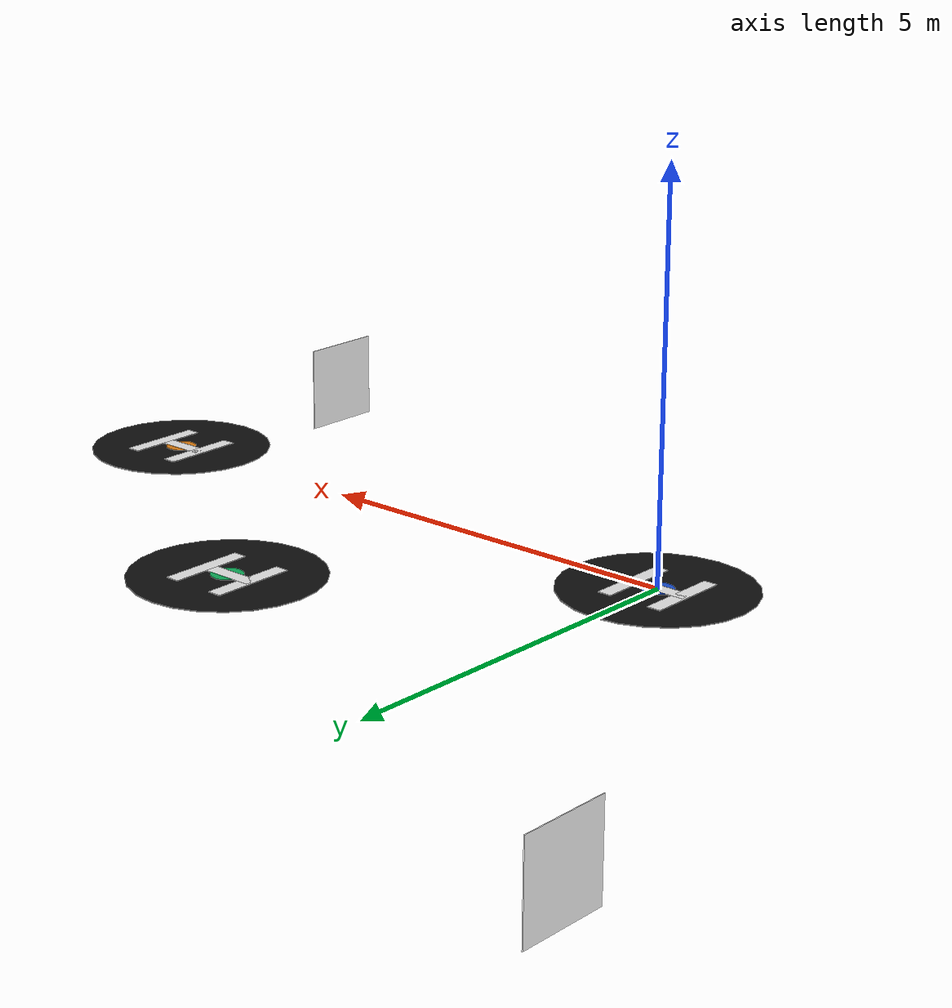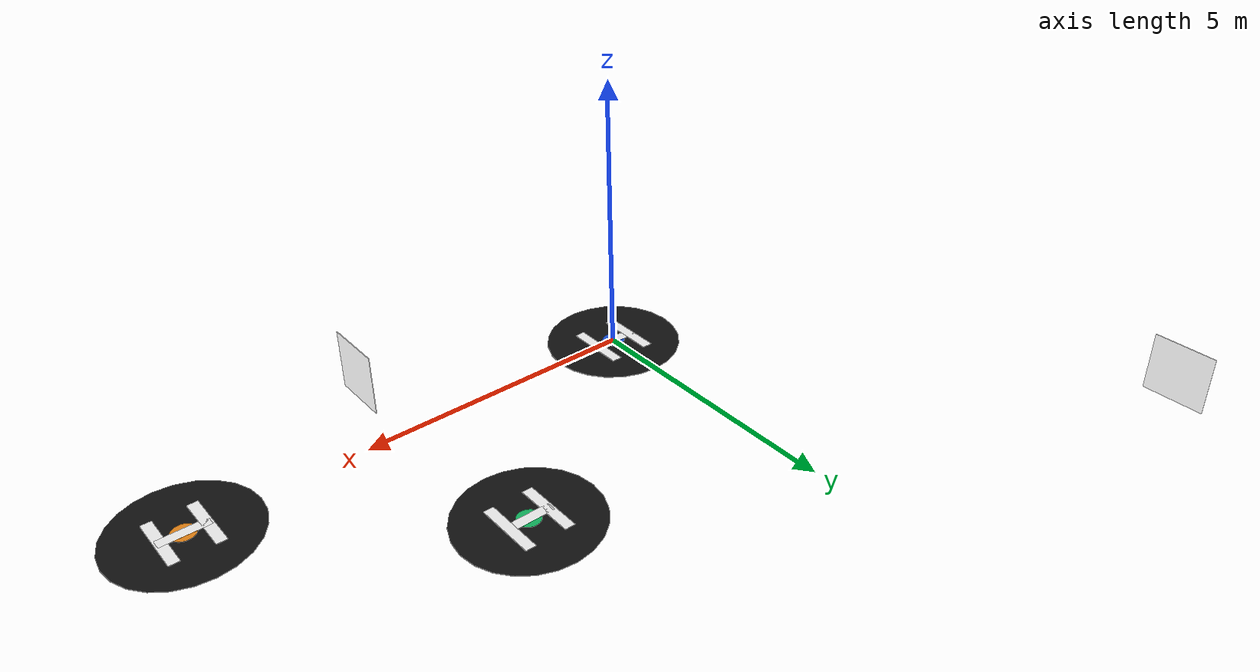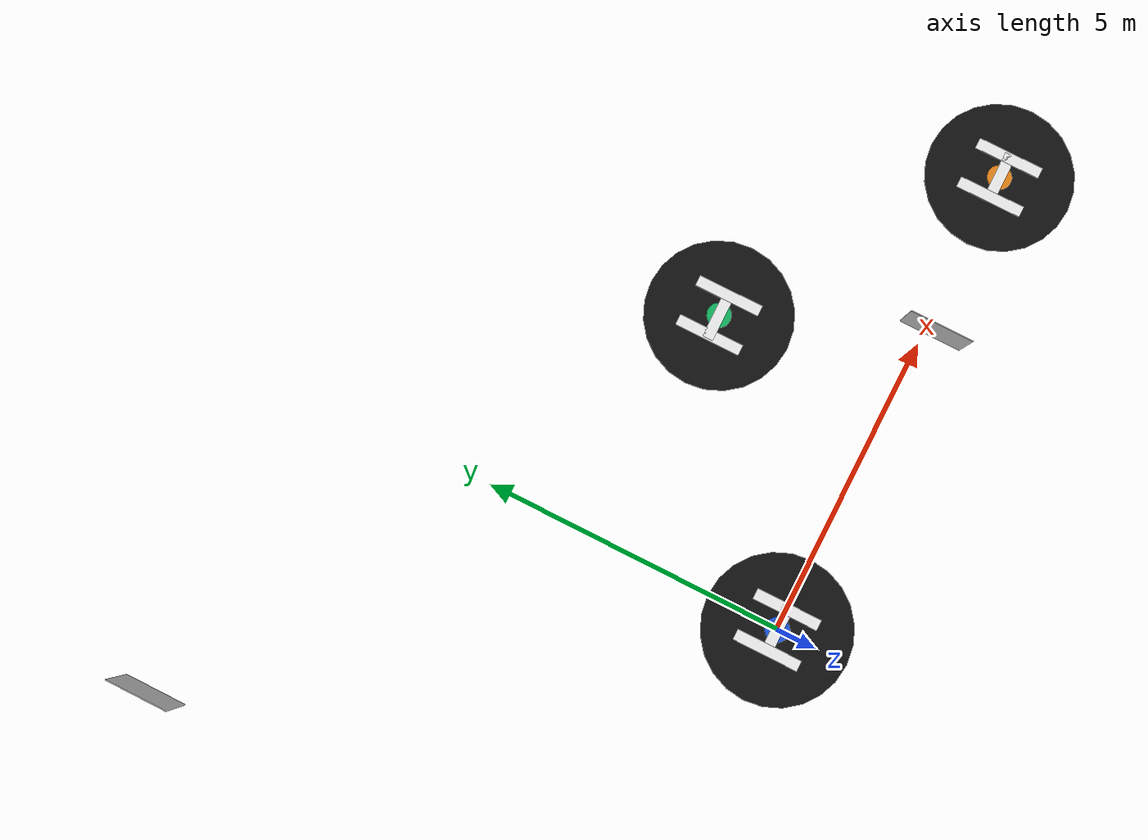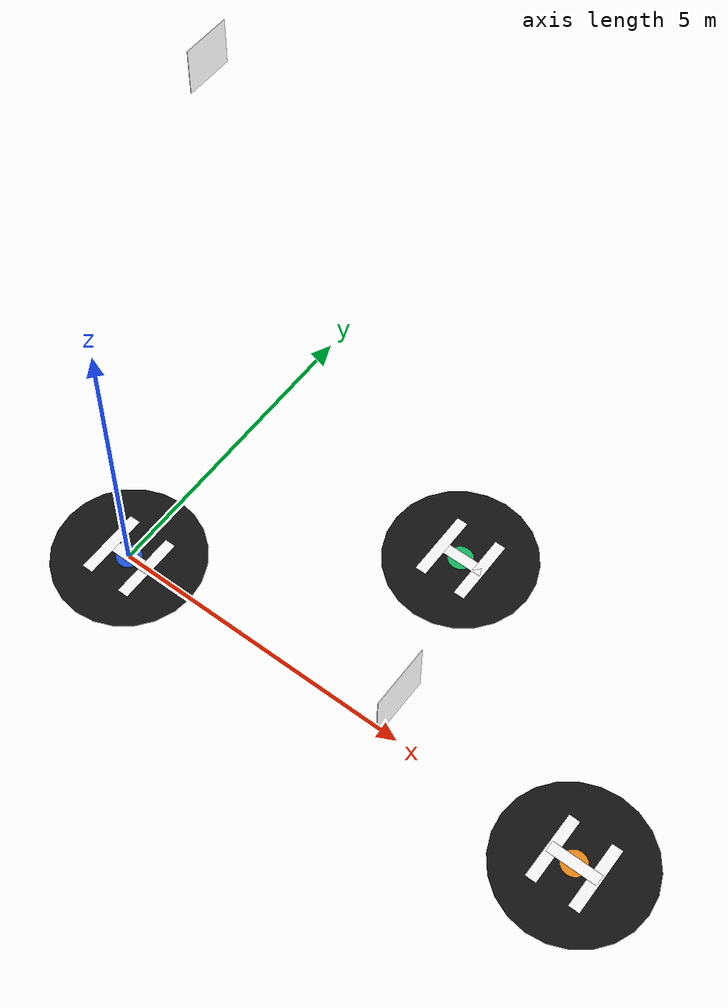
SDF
<sdf version="1.7">
 <world name="skyw_multi_lz_world">
  <physics type="ode"><max_step_size>0.003</max_step_size><real_time_factor>1.0</real_time_factor></physics>
  <plugin name="gz::sim::systems::Physics" filename="gz-sim-physics-system"/>
  <plugin name="gz::sim::systems::UserCommands" filename="gz-sim-user-commands-system"/>
  <plugin name="gz::sim::systems::SceneBroadcaster" filename="gz-sim-scene-broadcaster-system"/>
  <plugin name="gz::sim::systems::Contact" filename="gz-sim-contact-system"/>
  <plugin name="gz::sim::systems::Sensors" filename="gz-sim-sensors-system">
   <render_engine>ogre2</render_engine>
  </plugin>
  <scene>
   <ambient>1 1 1 1</ambient>
   <background>0.3 0.7 0.9 1</background>
   <shadows>0</shadows>
   <grid>false</grid>
  </scene>
  <model name="ground_plane">
   <static>true</static>
   <link name="link">
    <collision name="collision">
     <geometry><plane><normal>0.0 0.0 1</normal><size>1 1</size></plane></geometry>
    </collision>
   </link>
  </model>
  <model name="lz_drone_0">
   <static>true</static>
   <link name="link">
    <visual name="pad_base">
     <pose>0 0 0.005 0 0 0</pose>
     <geometry><cylinder><radius>1.2</radius><length>0.01</length></cylinder></geometry>
     <material>
      <ambient>0.08 0.08 0.08 1</ambient>
      <diffuse>0.08 0.08 0.08 1</diffuse>
      <specular>0.15 0.15 0.15 1</specular>
     </material>
    </visual>
    <visual name="h_left">
     <pose>-0.35 0 0.014 0 0 0</pose>
     <geometry><box><size>0.18 1.1 0.008</size></box></geometry>
     <material><ambient>1 1 1 1</ambient><diffuse>1 1 1 1</diffuse></material>
    </visual>
    <visual name="h_right">
     <pose>0.35 0 0.014 0 0 0</pose>
     <geometry><box><size>0.18 1.1 0.008</size></box></geometry>
     <material><ambient>1 1 1 1</ambient><diffuse>1 1 1 1</diffuse></material>
    </visual>
    <visual name="h_center">
     <pose>0 0 0.014 0 0 0</pose>
     <geometry><box><size>0.82 0.18 0.008</size></box></geometry>
     <material><ambient>1 1 1 1</ambient><diffuse>1 1 1 1</diffuse></material>
    </visual>
    <visual name="accent">
     <pose>0 0 0.013 0 0 0</pose>
     <geometry><cylinder><radius>0.2</radius><length>0.006</length></cylinder></geometry>
     <material><ambient>0.12 0.35 0.9 1</ambient><diffuse>0.12 0.35 0.9 1</diffuse></material>
    </visual>
   </link>
  </model>
  <model name="lz_drone_1">
   <static>true</static>
   <pose>4 3 0 0 0 0</pose>
   <link name="link">
    <visual name="pad_base">
     <pose>0 0 0.005 0 0 0</pose>
     <geometry><cylinder><radius>1.2</radius><length>0.01</length></cylinder></geometry>
     <material>
      <ambient>0.08 0.08 0.08 1</ambient>
      <diffuse>0.08 0.08 0.08 1</diffuse>
      <specular>0.15 0.15 0.15 1</specular>
     </material>
    </visual>
    <visual name="h_left">
     <pose>-0.35 0 0.014 0 0 0</pose>
     <geometry><box><size>0.18 1.1 0.008</size></box></geometry>
     <material><ambient>1 1 1 1</ambient><diffuse>1 1 1 1</diffuse></material>
    </visual>
    <visual name="h_right">
     <pose>0.35 0 0.014 0 0 0</pose>
     <geometry><box><size>0.18 1.1 0.008</size></box></geometry>
     <material><ambient>1 1 1 1</ambient><diffuse>1 1 1 1</diffuse></material>
    </visual>
    <visual name="h_center">
     <pose>0 0 0.014 0 0 0</pose>
     <geometry><box><size>0.82 0.18 0.008</size></box></geometry>
     <material><ambient>1 1 1 1</ambient><diffuse>1 1 1 1</diffuse></material>
    </visual>
    <visual name="accent">
     <pose>0 0 0.013 0 0 0</pose>
     <geometry><cylinder><radius>0.2</radius><length>0.006</length></cylinder></geometry>
     <material><ambient>0.08 0.75 0.4 1</ambient><diffuse>0.08 0.75 0.4 1</diffuse></material>
    </visual>
   </link>
  </model>
  <model name="lz_drone_2">
   <static>true</static>
   <pose>8 0 0 0 0 0</pose>
   <link name="link">
    <visual name="pad_base">
     <pose>0 0 0.005 0 0 0</pose>
     <geometry><cylinder><radius>1.2</radius><length>0.01</length></cylinder></geometry>
     <material>
      <ambient>0.08 0.08 0.08 1</ambient>
      <diffuse>0.08 0.08 0.08 1</diffuse>
      <specular>0.15 0.15 0.15 1</specular>
     </material>
    </visual>
    <visual name="h_left">
     <pose>-0.35 0 0.014 0 0 0</pose>
     <geometry><box><size>0.18 1.1 0.008</size></box></geometry>
     <material><ambient>1 1 1 1</ambient><diffuse>1 1 1 1</diffuse></material>
    </visual>
    <visual name="h_right">
     <pose>0.35 0 0.014 0 0 0</pose>
     <geometry><box><size>0.18 1.1 0.008</size></box></geometry>
     <material><ambient>1 1 1 1</ambient><diffuse>1 1 1 1</diffuse></material>
    </visual>
    <visual name="h_center">
     <pose>0 0 0.014 0 0 0</pose>
     <geometry><box><size>0.82 0.18 0.008</size></box></geometry>
     <material><ambient>1 1 1 1</ambient><diffuse>1 1 1 1</diffuse></material>
    </visual>
    <visual name="accent">
     <pose>0 0 0.013 0 0 0</pose>
     <geometry><cylinder><radius>0.2</radius><length>0.006</length></cylinder></geometry>
     <material><ambient>0.95 0.55 0.1 1</ambient><diffuse>0.95 0.55 0.1 1</diffuse></material>
    </visual>
   </link>
  </model>
  <include><uri>model://qr_simple</uri><name>qr_code_1</name><pose>5 0 1.5 0 0 1.57</pose></include>
  <include><uri>model://qr_competition</uri><name>qr_code_2</name><pose>-5 8 1.2 0 0 0</pose></include>
 </world>
</sdf>

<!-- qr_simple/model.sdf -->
<sdf version="1.7">
  <model name="qr_simple">
    <static>true</static>
    <link name="link">
      <visual name="visual">
        <geometry>
          <box>
            <size>1.0 0.01 1.0</size>
          </box>
        </geometry>
        <material>
          <ambient>1 1 1 1</ambient>
          <diffuse>1 1 1 1</diffuse>
          <specular>0.1 0.1 0.1 1</specular>
          <emissive>0 0 0 1</emissive>
          <pbr>
            <metal>
              <albedo_map>qr-simple.jpg</albedo_map>
            </metal>
          </pbr>
        </material>
      </visual>
      <collision name="collision">
        <geometry>
          <box>
            <size>1.0 0.01 1.0</size>
          </box>
        </geometry>
      </collision>
    </link>
  </model>
</sdf>

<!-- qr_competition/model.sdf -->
<sdf version="1.7">
  <model name="qr_competition">
    <static>true</static>
    <link name="link">
      <visual name="visual">
        <geometry>
          <box>
            <size>0.01 1.0 1.0</size>
          </box>
        </geometry>
        <material>
          <ambient>1 1 1 1</ambient>
          <diffuse>1 1 1 1</diffuse>
          <specular>0.1 0.1 0.1 1</specular>
          <emissive>0 0 0 1</emissive>
          <pbr>
            <metal>
              <albedo_map>qr-competition.jpg</albedo_map>
            </metal>
          </pbr>
        </material>
      </visual>
      <collision name="collision">
        <geometry>
          <box>
            <size>0.01 1.0 1.0</size>
          </box>
        </geometry>
      </collision>
    </link>
  </model>
</sdf>
